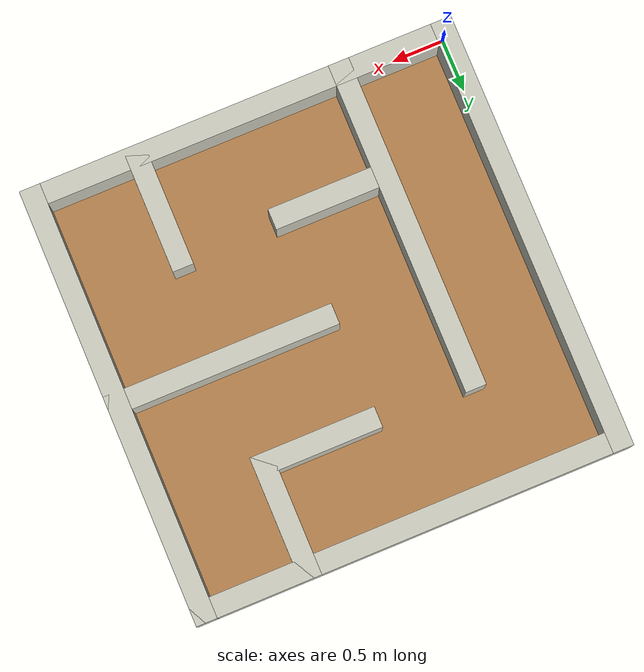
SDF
<?xml version='1.0'?>
<sdf version='1.4'>
    <world name="small_maze">
      <gui>
        <camera name="my_camera">
          <pose>2 2 8 0 1.57 1.57</pose>
        </camera>
      </gui>

    <scene>
      <ambient>0.5 0.5 0.5 1</ambient>
      <background>0.5 0.5 0.5 1</background>
      <shadows>0</shadows>
    </scene>

    <light type="directional" name="luz_Techo">
      <pose>2 2 9 0 0 0</pose>
      <diffuse>127 127 127 255</diffuse>
      <specular>25 25 25 255</specular>
      <attenuation>
        <range>20</range>
        <linear>0.2</linear>
        <constant>0.8</constant>
        <quadratic>0.01</quadratic>
      </attenuation>
      <cast_shadows>false</cast_shadows>
    </light>

      <model name='laberinto'>

        <link name="ground">
           <collision name='ground'>
            <geometry>
              <box>
                <size>4 4 0.01</size>
              </box>
            </geometry>
            <pose>1 1 0 0 -0 0</pose>
          </collision>
          <visual name='ground'>
            <pose>1 1 0 0 -0 0</pose>
            <geometry>
              <box>
                <size>4 4 0.01</size>
              </box>
            </geometry>
            <material>
              <script>
                <uri>file://media/materials/scripts/gazebo.material</uri>
                <name>Gazebo/WoodFloor</name>
              </script>
            </material>
          </visual>
          <velocity_decay>
            <linear>0</linear>
            <angular>0</angular>
          </velocity_decay>
            <pose>1 1 0 0 -0 0</pose>
        </link>
        <link name='Wall_9'>
          <collision name='Wall_9_Collision'>
            <geometry>
              <box>
                <size>3.2 0.2 0.5</size>
              </box>
            </geometry>
            <pose>0 0 0.25 0 -0 0</pose>
          </collision>
          <visual name='Wall_9_Visual'>
            <pose>0 0 0.25 0 -0 0</pose>
            <geometry>
              <box>
                <size>3.2 0.2 0.5</size>
              </box>
            </geometry>
            <material>
              <script>
                <uri>file://media/materials/scripts/gazebo.material</uri>
                <name>Gazebo/PaintedWall</name>
              </script>
            </material>
          </visual>
          <velocity_decay>
            <linear>0</linear>
            <angular>0</angular>
          </velocity_decay>
          <pose>1 1.5 0 0 0 -1.5708</pose>
        </link>
        <link name='Wall_12'>
          <collision name='Wall_12_Collision'>
            <geometry>
              <box>
                <size>1.2 0.2 0.5</size>
              </box>
            </geometry>
            <pose>0 0 0.25 0 -0 0</pose>
          </collision>
          <visual name='Wall_12_Visual'>
            <pose>0 0 0.25 0 -0 0</pose>
            <geometry>
              <box>
                <size>1.2 0.2 0.5</size>
              </box>
            </geometry>
            <material>
              <script>
                <uri>file://media/materials/scripts/gazebo.material</uri>
                <name>Gazebo/PaintedWall</name>
              </script>
            </material>
          </visual>
          <velocity_decay>
            <linear>0</linear>
            <angular>0</angular>
          </velocity_decay>
          <pose>1.5 1 0 0 -0 0</pose>
        </link>
        <link name='Wall_15'>
          <collision name='Wall_15_Collision'>
            <geometry>
              <box>
                <size>2.2 0.2 0.5</size>
              </box>
            </geometry>
            <pose>0 0 0.25 0 -0 0</pose>
          </collision>
          <visual name='Wall_15_Visual'>
            <pose>0 0 0.25 0 -0 0</pose>
            <geometry>
              <box>
                <size>2.2 0.2 0.5</size>
              </box>
            </geometry>
            <material>
              <script>
                <uri>file://media/materials/scripts/gazebo.material</uri>
                <name>Gazebo/PaintedWall</name>
              </script>
            </material>
          </visual>
          <velocity_decay>
            <linear>0</linear>
            <angular>0</angular>
          </velocity_decay>
          <pose>3 2 0 0 -0 0</pose>
        </link>
        <link name='Wall_17'>
          <collision name='Wall_17_Collision'>
            <geometry>
              <box>
                <size>1.2 0.2 0.5</size>
              </box>
            </geometry>
            <pose>0 0 0.25 0 -0 0</pose>
          </collision>
          <visual name='Wall_17_Visual'>
            <pose>0 0 0.25 0 -0 0</pose>
            <geometry>
              <box>
                <size>1.2 0.2 0.5</size>
              </box>
            </geometry>
            <material>
              <script>
                <uri>file://media/materials/scripts/gazebo.material</uri>
                <name>Gazebo/PaintedWall</name>
              </script>
            </material>
          </visual>
          <velocity_decay>
            <linear>0</linear>
            <angular>0</angular>
          </velocity_decay>
          <pose>3 0.5 0 0 0 -1.5708</pose>
        </link>
        <link name='Wall_19'>
          <collision name='Wall_19_Collision'>
            <geometry>
              <box>
                <size>1.2 0.2 0.5</size>
              </box>
            </geometry>
            <pose>0 0 0.25 0 -0 0</pose>
          </collision>
          <visual name='Wall_19_Visual'>
            <pose>0 0 0.25 0 -0 0</pose>
            <geometry>
              <box>
                <size>1.2 0.2 0.5</size>
              </box>
            </geometry>
            <material>
              <script>
                <uri>file://media/materials/scripts/gazebo.material</uri>
                <name>Gazebo/PaintedWall</name>
              </script>
            </material>
          </visual>
          <velocity_decay>
            <linear>0</linear>
            <angular>0</angular>
          </velocity_decay>
          <pose>2.5 3 0 0 -0 0</pose>
        </link>
        <link name='Wall_20'>
          <collision name='Wall_20_Collision'>
            <geometry>
              <box>
                <size>1.2 0.2 0.5</size>
              </box>
            </geometry>
            <pose>0 0 0.25 0 -0 0</pose>
          </collision>
          <visual name='Wall_20_Visual'>
            <pose>0 0 0.25 0 -0 0</pose>
            <geometry>
              <box>
                <size>1.2 0.2 0.5</size>
              </box>
            </geometry>
            <material>
              <script>
                <uri>file://media/materials/scripts/gazebo.material</uri>
                <name>Gazebo/PaintedWall</name>
              </script>
            </material>
          </visual>
          <velocity_decay>
            <linear>0</linear>
            <angular>0</angular>
          </velocity_decay>
          <pose>3 3.5 0 0 0 -1.5708</pose>
        </link>
        <link name='Muro_Sur'>
          <collision name='Muro_Sur_Collision'>
            <geometry>
              <box>
                <size>4.2 0.2 0.5</size>
              </box>
            </geometry>
            <pose>0 0 0.25 0 -0 0</pose>
          </collision>
          <visual name='Muro_Sur_Visual'>
            <pose>0 0 0.25 0 -0 0</pose>
            <geometry>
              <box>
                <size>4.2 0.2 0.5</size>
              </box>
            </geometry>
            <material>
              <script>
                <uri>file://media/materials/scripts/gazebo.material</uri>
                <name>Gazebo/PaintedWall</name>
              </script>
            </material>
          </visual>
          <velocity_decay>
            <linear>0</linear>
            <angular>0</angular>
          </velocity_decay>
          <pose>2 0 0 0 -0 0</pose>
        </link>
        <link name='Muro_Este'>
          <collision name='Muro_Este_Collision'>
            <geometry>
              <box>
                <size>4.2 0.2 0.5</size>
              </box>
            </geometry>
            <pose>0 0 0.25 0 -0 0</pose>
          </collision>
          <visual name='Muro_Este_Visual'>
            <pose>0 0 0.25 0 -0 0</pose>
            <geometry>
              <box>
                <size>4.2 0.2 0.5</size>
              </box>
            </geometry>
            <material>
              <script>
                <uri>file://media/materials/scripts/gazebo.material</uri>
                <name>Gazebo/PaintedWall</name>
              </script>
            </material>
          </visual>
          <velocity_decay>
            <linear>0</linear>
            <angular>0</angular>
          </velocity_decay>
          <pose>4 2 0 0 0 -1.5708</pose>
        </link>
        <link name='Muro_Norte'>
          <collision name='Muro_Norte_Collision'>
            <geometry>
              <box>
                <size>4.2 0.2 0.5</size>
              </box>
            </geometry>
            <pose>0 0 0.25 0 -0 0</pose>
          </collision>
          <visual name='Muro_Norte_Visual'>
            <pose>0 0 0.25 0 -0 0</pose>
            <geometry>
              <box>
                <size>4.2 0.2 0.5</size>
              </box>
            </geometry>
            <material>
              <script>
                <uri>file://media/materials/scripts/gazebo.material</uri>
                <name>Gazebo/PaintedWall</name>
              </script>
            </material>
          </visual>
          <velocity_decay>
            <linear>0</linear>
            <angular>0</angular>
          </velocity_decay>
          <pose>2 4 0 0 -0 3.14159</pose>
        </link>
        <link name='Muro_Oeste'>
          <collision name='Muro_Oeste_Collision'>
            <geometry>
              <box>
                <size>4.2 0.2 0.5</size>
              </box>
            </geometry>
            <pose>0 0 0.25 0 -0 0</pose>
          </collision>
          <visual name='Muro_Oeste_Visual'>
            <pose>0 0 0.25 0 -0 0</pose>
            <geometry>
              <box>
                <size>4.2 0.2 0.5</size>
              </box>
            </geometry>
            <material>
              <script>
                <uri>file://media/materials/scripts/gazebo.material</uri>
                <name>Gazebo/PaintedWall</name>
              </script>
            </material>
          </visual>
          <velocity_decay>
            <linear>0</linear>
            <angular>0</angular>
          </velocity_decay>
          <pose>0 2 0 0 -0 1.5708</pose>
        </link>
        <static>1</static>
      </model>
    </world>
</sdf>
